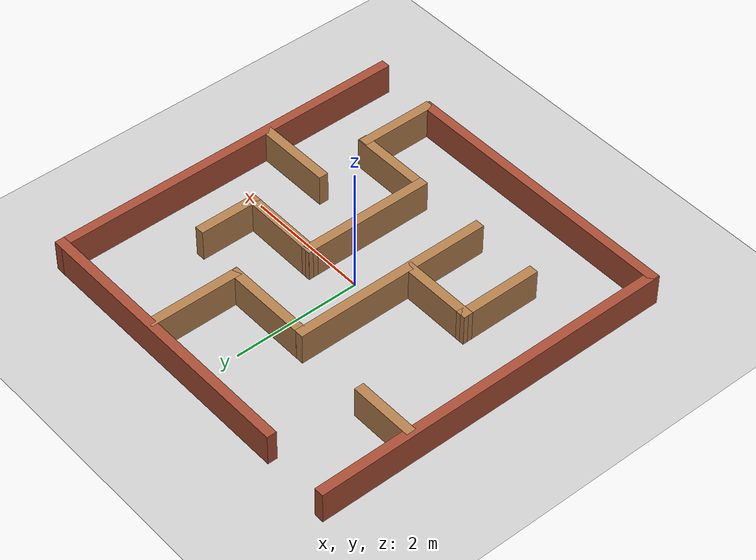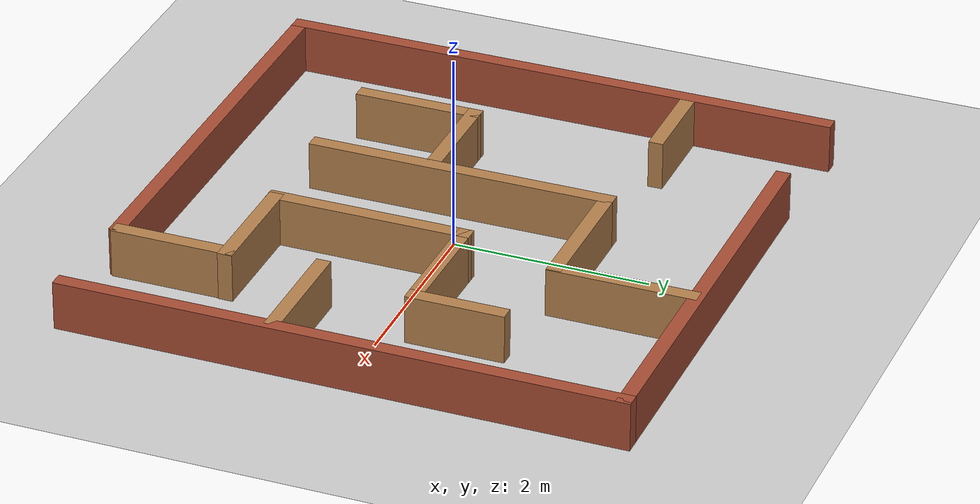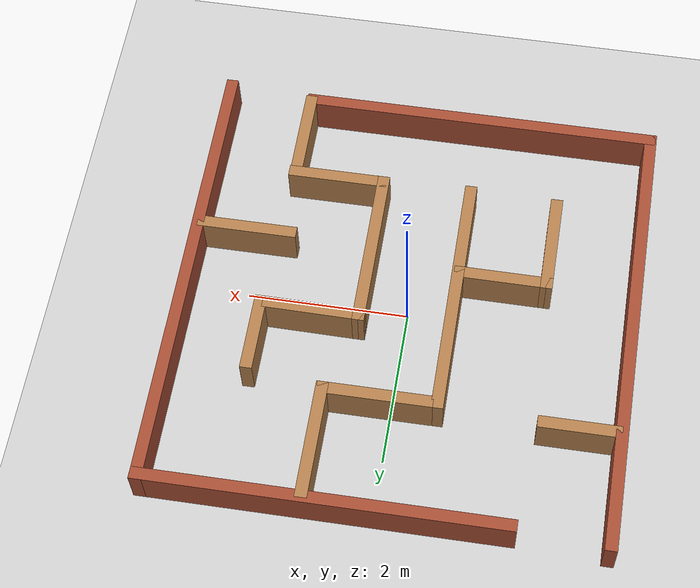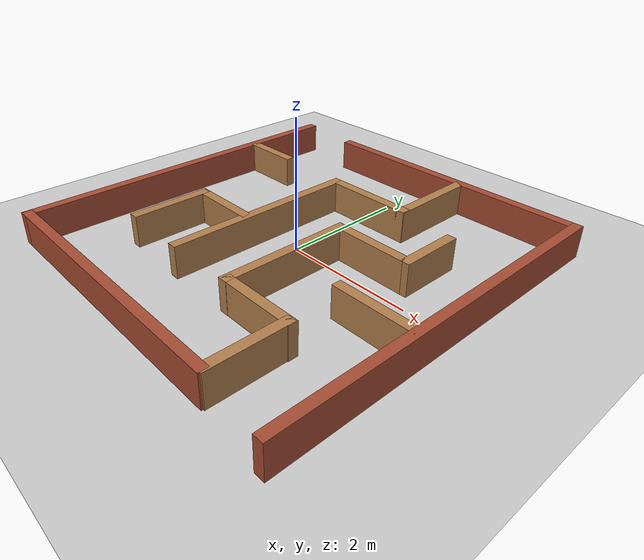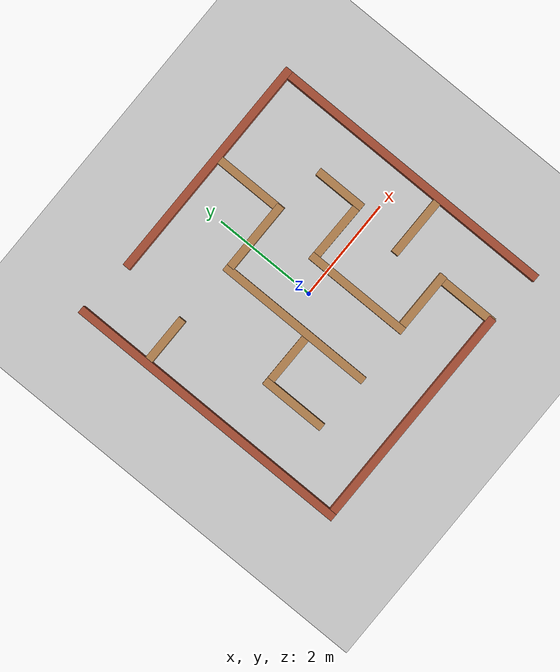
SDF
<sdf version="1.6">
 <world name="default">
  <light name="sun" type="directional">
   <pose>0 0 10 0 -0 0</pose>
   <diffuse>0.8 0.8 0.8 1</diffuse>
   <specular>0.2 0.2 0.2 1</specular>
   <attenuation>
    <range>1000</range>
    <constant>0.9</constant>
    <linear>0.01</linear>
    <quadratic>0.001</quadratic>
   </attenuation>
   <direction>-0.5 0.1 -0.9</direction>
  </light>
  <model name="ground_plane">
   <static>1</static>
   <link name="link">
    <collision name="collision">
     <geometry><plane><normal>0 0 1</normal><size>100 100</size></plane></geometry>
     <surface><friction><ode><mu>100</mu><mu2>50</mu2></ode></friction></surface>
    </collision>
    <visual name="visual">
     <cast_shadows>0</cast_shadows>
     <geometry><plane><normal>0 0 1</normal><size>100 100</size></plane></geometry>
     <material>
      <script><uri>file://media/materials/scripts/gazebo.material</uri><name>Gazebo/Grey</name></script>
     </material>
    </visual>
   </link>
  </model>
  <gravity>0 0 -9.8</gravity>
  <magnetic_field>6e-06 2.3e-05 -4.2e-05</magnetic_field>
  <atmosphere type="adiabatic"/>
  <physics name="default_physics" default="0" type="ode">
   <max_step_size>0.001</max_step_size>
   <real_time_factor>1</real_time_factor>
   <real_time_update_rate>1000</real_time_update_rate>
  </physics>
  <scene><ambient>0.4 0.4 0.4 1</ambient><background>0.7 0.7 0.7 1</background><shadows>1</shadows></scene>
  <audio><device>default</device></audio>
  <spherical_coordinates>
   <surface_model>EARTH_WGS84</surface_model>
   <latitude_deg>0</latitude_deg>
   <longitude_deg>0</longitude_deg>
   <elevation>0</elevation>
   <heading_deg>0</heading_deg>
  </spherical_coordinates>
  <model name="pokemon_maze_cs401">
   <link name="Wall_14">
    <collision name="Wall_14_Collision">
     <geometry><box><size>4.5 0.15 0.5</size></box></geometry>
     <pose>0 0 0.25 0 -0 0</pose>
    </collision>
    <visual name="Wall_14_Visual">
     <pose>0 0 0.25 0 -0 0</pose>
     <geometry><box><size>4.5 0.15 0.5</size></box></geometry>
     <material>
      <script><uri>file://media/materials/scripts/gazebo.material</uri><name>Gazebo/Bricks</name></script>
      <ambient>1 1 1 1</ambient>
     </material>
     <meta><layer>0</layer></meta>
    </visual>
    <pose>0.575138 2.76514 0 0 -0 0</pose>
   </link>
   <link name="Wall_15">
    <collision name="Wall_15_Collision">
     <geometry><box><size>5.75 0.15 0.5</size></box></geometry>
     <pose>0 0 0.25 0 -0 0</pose>
    </collision>
    <visual name="Wall_15_Visual">
     <pose>0 0 0.25 0 -0 0</pose>
     <geometry><box><size>5.75 0.15 0.5</size></box></geometry>
     <material>
      <script><uri>file://media/materials/scripts/gazebo.material</uri><name>Gazebo/Bricks</name></script>
      <ambient>1 1 1 1</ambient>
     </material>
     <meta><layer>0</layer></meta>
    </visual>
    <pose>2.75014 -0.034857 0 0 -0 -1.5708</pose>
   </link>
   <link name="Wall_17">
    <collision name="Wall_17_Collision">
     <geometry><box><size>5.75 0.15 0.5</size></box></geometry>
     <pose>0 0 0.25 0 -0 0</pose>
    </collision>
    <visual name="Wall_17_Visual">
     <pose>0 0 0.25 0 -0 0</pose>
     <geometry><box><size>5.75 0.15 0.5</size></box></geometry>
     <material>
      <script><uri>file://media/materials/scripts/gazebo.material</uri><name>Gazebo/Bricks</name></script>
      <ambient>1 1 1 1</ambient>
     </material>
     <meta><layer>0</layer></meta>
    </visual>
    <pose>-2.75014 0.034857 0 0 -0 -1.5708</pose>
   </link>
   <link name="Wall_18">
    <collision name="Wall_18_Collision">
     <geometry><box><size>4.53776 0.15 0.5</size></box></geometry>
     <pose>0 0 0.25 0 -0 0</pose>
    </collision>
    <visual name="Wall_18_Visual">
     <pose>0 0 0.25 0 -0 0</pose>
     <geometry><box><size>4.53776 0.15 0.5</size></box></geometry>
     <material>
      <script><uri>file://media/materials/scripts/gazebo.material</uri><name>Gazebo/Bricks</name></script>
      <ambient>1 1 1 1</ambient>
     </material>
     <meta><layer>0</layer></meta>
    </visual>
    <pose>-0.541342 -2.76514 0 0 -0 0</pose>
   </link>
   <link name="Wall_20">
    <collision name="Wall_20_Collision">
     <geometry><box><size>1.39624 0.15 0.5</size></box></geometry>
     <pose>0 0 0.25 0 -0 0</pose>
    </collision>
    <visual name="Wall_20_Visual">
     <pose>0 0 0.25 0 -0 0</pose>
     <geometry><box><size>1.39624 0.15 0.5</size></box></geometry>
     <material>
      <script><uri>file://media/materials/scripts/gazebo.material</uri><name>Gazebo/Wood</name></script>
      <ambient>1 1 1 1</ambient>
     </material>
     <meta><layer>0</layer></meta>
    </visual>
    <pose>0.186958 1.35833 0 0 -0 0</pose>
   </link>
   <link name="Wall_21">
    <collision name="Wall_21_Collision">
     <geometry><box><size>1.5 0.15 0.5</size></box></geometry>
     <pose>0 0 0.25 0 -0 0</pose>
    </collision>
    <visual name="Wall_21_Visual">
     <pose>0 0 0.25 0 -0 0</pose>
     <geometry><box><size>1.5 0.15 0.5</size></box></geometry>
     <material>
      <script><uri>file://media/materials/scripts/gazebo.material</uri><name>Gazebo/Wood</name></script>
      <ambient>1 1 1 1</ambient>
     </material>
     <meta><layer>0</layer></meta>
    </visual>
    <pose>0.823048 2.03333 0 0 -0 1.5708</pose>
   </link>
   <link name="Wall_23">
    <collision name="Wall_23_Collision">
     <geometry><box><size>3.15 0.15 0.5</size></box></geometry>
     <pose>0 0 0.25 0 -0 0</pose>
    </collision>
    <visual name="Wall_23_Visual">
     <pose>0 0 0.25 0 -0 0</pose>
     <geometry><box><size>3.15 0.15 0.5</size></box></geometry>
     <material>
      <script><uri>file://media/materials/scripts/gazebo.material</uri><name>Gazebo/Wood</name></script>
      <ambient>1 1 1 1</ambient>
     </material>
     <meta><layer>0</layer></meta>
    </visual>
    <pose>-0.562909 -0.142882 0 0 -0 -1.5708</pose>
   </link>
   <link name="Wall_25">
    <collision name="Wall_25_Collision">
     <geometry><box><size>1 0.15 0.5</size></box></geometry>
     <pose>0 0 0.25 0 -0 0</pose>
    </collision>
    <visual name="Wall_25_Visual">
     <pose>0 0 0.25 0 -0 0</pose>
     <geometry><box><size>1 0.15 0.5</size></box></geometry>
     <material>
      <script><uri>file://media/materials/scripts/gazebo.material</uri><name>Gazebo/Wood</name></script>
      <ambient>1 1 1 1</ambient>
     </material>
     <meta><layer>0</layer></meta>
    </visual>
    <pose>-2.25203 1.42375 0 0 -0 0</pose>
   </link>
   <link name="Wall_27">
    <collision name="Wall_27_Collision">
     <geometry><box><size>1.3 0.15 0.5</size></box></geometry>
     <pose>0 0 0.25 0 -0 0</pose>
    </collision>
    <visual name="Wall_27_Visual">
     <pose>0 0 0.25 0 -0 0</pose>
     <geometry><box><size>1.3 0.15 0.5</size></box></geometry>
     <material>
      <script><uri>file://media/materials/scripts/gazebo.material</uri><name>Gazebo/Wood</name></script>
      <ambient>1 1 1 1</ambient>
     </material>
     <meta><layer>0</layer></meta>
    </visual>
    <pose>-1.6582 -1.02577 0 0 -0 -1.5708</pose>
   </link>
   <link name="Wall_33">
    <collision name="Wall_33_Collision">
     <geometry><box><size>1 0.15 0.5</size></box></geometry>
     <pose>0 0 0.25 0 -0 0</pose>
    </collision>
    <visual name="Wall_33_Visual">
     <pose>0 0 0.25 0 -0 0</pose>
     <geometry><box><size>1 0.15 0.5</size></box></geometry>
     <material>
      <script><uri>file://media/materials/scripts/gazebo.material</uri><name>Gazebo/Wood</name></script>
      <ambient>1 1 1 1</ambient>
     </material>
     <meta><layer>0</layer></meta>
    </visual>
    <pose>1.76558 0.738 0 0 -0 -1.5708</pose>
   </link>
   <link name="Wall_35">
    <collision name="Wall_35_Collision">
     <geometry><box><size>2.1 0.15 0.5</size></box></geometry>
     <pose>0 0 0.25 0 -0 0</pose>
    </collision>
    <visual name="Wall_35_Visual">
     <pose>0 0 0.25 0 -0 0</pose>
     <geometry><box><size>2.1 0.15 0.5</size></box></geometry>
     <material>
      <script><uri>file://media/materials/scripts/gazebo.material</uri><name>Gazebo/Wood</name></script>
      <ambient>1 1 1 1</ambient>
     </material>
     <meta><layer>0</layer></meta>
    </visual>
    <pose>0.54985 -0.650626 0 0 -0 -1.5708</pose>
   </link>
   <link name="Wall_39">
    <collision name="Wall_39_Collision">
     <geometry><box><size>1.25 0.15 0.5</size></box></geometry>
     <pose>0 0 0.25 0 -0 0</pose>
    </collision>
    <visual name="Wall_39_Visual">
     <pose>0 0 0.25 0 -0 0</pose>
     <geometry><box><size>1.25 0.15 0.5</size></box></geometry>
     <material>
      <script><uri>file://media/materials/scripts/gazebo.material</uri><name>Gazebo/Wood</name></script>
      <ambient>1 1 1 1</ambient>
     </material>
     <meta><layer>0</layer></meta>
    </visual>
    <pose>1.13595 -1.62351 0 0 -0 0</pose>
   </link>
   <link name="Wall_41">
    <collision name="Wall_41_Collision">
     <geometry><box><size>1.25 0.15 0.5</size></box></geometry>
     <pose>0 0 0.25 0 -0 0</pose>
    </collision>
    <visual name="Wall_41_Visual">
     <pose>0 0 0.25 0 -0 0</pose>
     <geometry><box><size>1.25 0.15 0.5</size></box></geometry>
     <material>
      <script><uri>file://media/materials/scripts/gazebo.material</uri><name>Gazebo/Wood</name></script>
      <ambient>1 1 1 1</ambient>
     </material>
     <meta><layer>0</layer></meta>
    </visual>
    <pose>1.6754 -2.18759 0 0 -0 -1.5708</pose>
   </link>
   <link name="Wall_43">
    <collision name="Wall_43_Collision">
     <geometry><box><size>1.26134 0.15 0.5</size></box></geometry>
     <pose>0 0 0.25 0 -0 0</pose>
    </collision>
    <visual name="Wall_43_Visual">
     <pose>0 0 0.25 0 -0 0</pose>
     <geometry><box><size>1.26134 0.15 0.5</size></box></geometry>
     <material>
      <script><uri>file://media/materials/scripts/gazebo.material</uri><name>Gazebo/Wood</name></script>
      <ambient>1 1 1 1</ambient>
     </material>
     <meta><layer>0</layer></meta>
    </visual>
    <pose>1.10549 0.318735 0 0 -0 -0.010148</pose>
   </link>
   <link name="Wall_47">
    <collision name="Wall_47_Collision">
     <geometry><box><size>1.25 0.15 0.5</size></box></geometry>
     <pose>0 0 0.25 0 -0 0</pose>
    </collision>
    <visual name="Wall_47_Visual">
     <pose>0 0 0.25 0 -0 0</pose>
     <geometry><box><size>1.25 0.15 0.5</size></box></geometry>
     <material>
      <script><uri>file://media/materials/scripts/gazebo.material</uri><name>Gazebo/Wood</name></script>
      <ambient>1 1 1 1</ambient>
     </material>
     <meta><layer>0</layer></meta>
    </visual>
    <pose>2.13068 -0.714156 0 0 -0 0</pose>
   </link>
   <link name="Wall_49">
    <collision name="Wall_49_Collision">
     <geometry><box><size>1.22083 0.15 0.5</size></box></geometry>
     <pose>0 0 0.25 0 -0 0</pose>
    </collision>
    <visual name="Wall_49_Visual">
     <pose>0 0 0.25 0 -0 0</pose>
     <geometry><box><size>1.22083 0.15 0.5</size></box></geometry>
     <material>
      <script><uri>file://media/materials/scripts/gazebo.material</uri><name>Gazebo/Wood</name></script>
      <ambient>1 1 1 1</ambient>
     </material>
     <meta><layer>0</layer></meta>
    </visual>
    <pose>-1.12279 -0.452587 0 0 -0 -0.003397</pose>
   </link>
   <static>1</static>
  </model>
 </world>
</sdf>
